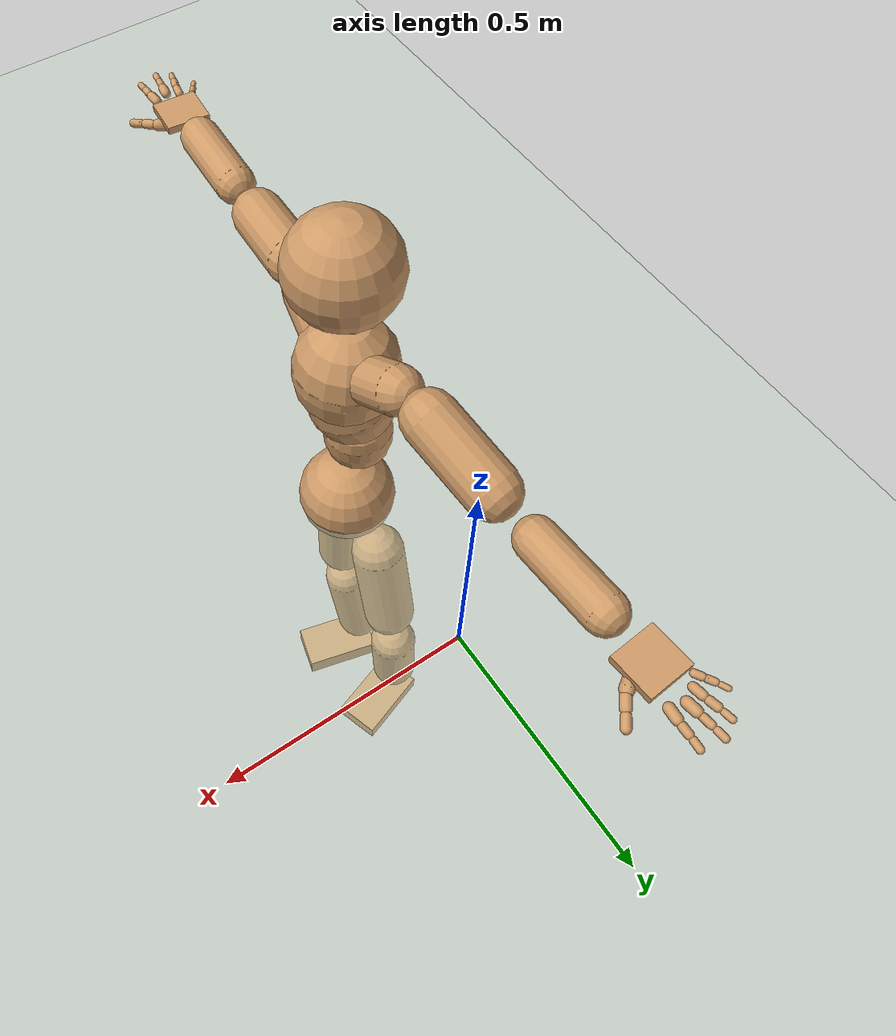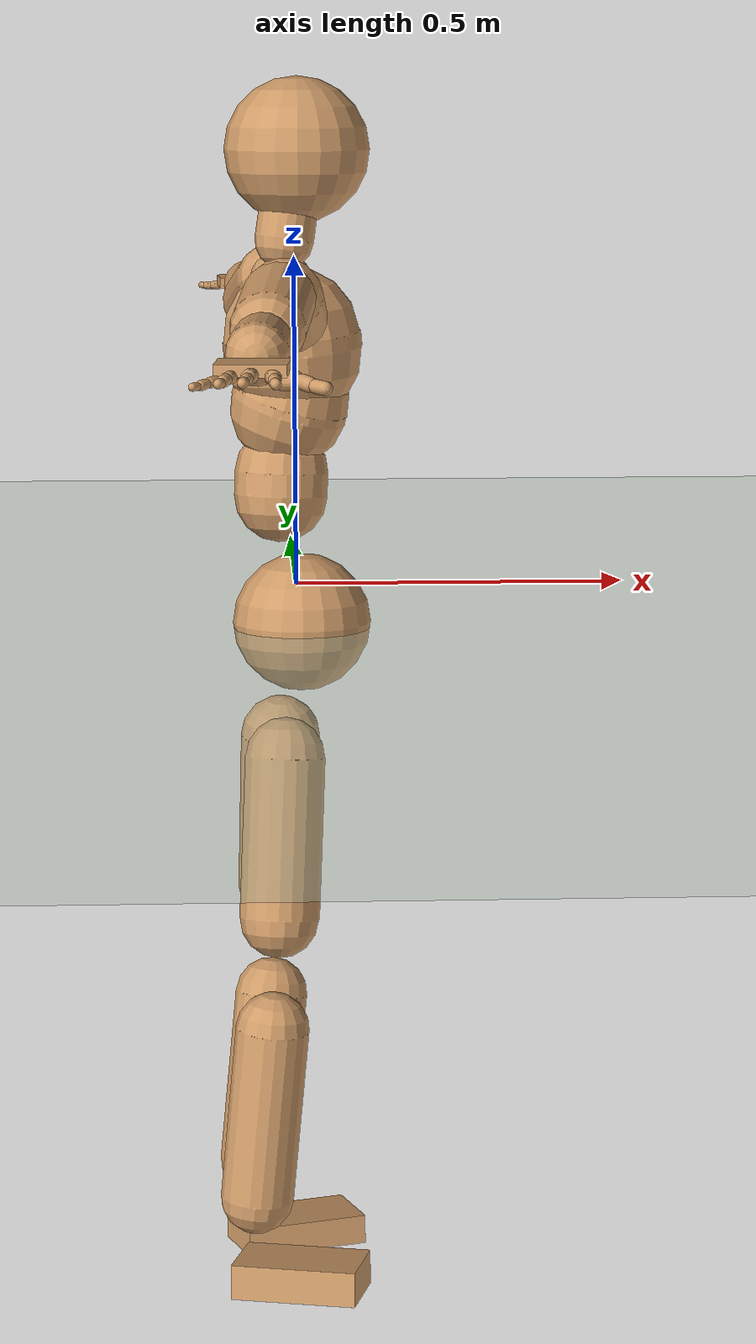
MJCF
<mujoco model="humanoid">
  <compiler coordinate="local" angle="radian"/>
  <default>
    <joint damping="0.0" armature="0.01" stiffness="0.0" limited="true"/>
    <geom conaffinity="1" condim="3" contype="7" margin="0.001" rgba="0.8 0.6 .4 1"/>
  </default>
  <asset>
    <texture type="skybox" builtin="gradient" rgb1=".4 .5 .6" rgb2="0 0 0" width="100" height="100"/>
    <texture builtin="flat" height="1278" mark="cross" markrgb="1 1 1" name="texgeom" random="0.01" rgb1="0.8 0.6 0.4" rgb2="0.8 0.6 0.4" type="cube" width="127"/>
    <texture builtin="checker" height="100" name="texplane" rgb1="0 0 0" rgb2="0.8 0.8 0.8" type="2d" width="100"/>
    <material name="MatPlane" reflectance="0.5" shininess="1" specular="1" texrepeat="60 60" texture="texplane"/>
    <material name="geom" texture="texgeom" texuniform="true"/>
  </asset>
  <worldbody>
    <light cutoff="100" diffuse="1 1 1" dir="-0 0 -1.3" directional="true" exponent="1" pos="0 0 1.3" specular=".1 .1 .1"/>
    <geom conaffinity="1" condim="3" name="floor" pos="0 0 0" rgba="0.8 0.9 0.8 1" size="100 100 .2" type="plane" material="MatPlane"/>
    <body name="Pelvis" pos="0.0008 -0.3877 0.0058">
      <freejoint name="Pelvis"/>
      <geom type="sphere" contype="1" conaffinity="1" density="500" size="0.0984" pos="0.0000 0.0000 0.0000" name="Pelvis"/>
      <body name="L_Hip" pos="-0.029 0.0532 -0.0979">
        <joint name="L_Hip_x" type="hinge" pos="0 0 0" axis="1 0 0" stiffness="800" damping="80" armature="0.02" range="-180.0000 180.0000"/>
        <joint name="L_Hip_y" type="hinge" pos="0 0 0" axis="0 1 0" stiffness="800" damping="80" armature="0.02" range="-180.0000 180.0000"/>
        <joint name="L_Hip_z" type="hinge" pos="0 0 0" axis="0 0 1" stiffness="800" damping="80" armature="0.02" range="-180.0000 180.0000"/>
        <geom type="capsule" contype="1" conaffinity="1" density="500" fromto="-0.0020 0.0131 -0.0796 -0.0079 0.0522 -0.3184" size="0.0573" name="L_Hip"/>
        <body name="L_Knee" pos="-0.0099 0.0653 -0.398">
          <joint name="L_Knee_x" type="hinge" pos="0 0 0" axis="1 0 0" stiffness="800" damping="80" armature="0.02" range="-180.0000 180.0000"/>
          <joint name="L_Knee_y" type="hinge" pos="0 0 0" axis="0 1 0" stiffness="800" damping="80" armature="0.02" range="-180.0000 180.0000"/>
          <joint name="L_Knee_z" type="hinge" pos="0 0 0" axis="0 0 1" stiffness="800" damping="80" armature="0.02" range="-180.0000 180.0000"/>
          <geom type="capsule" contype="1" conaffinity="1" density="500" fromto="-0.0082 -0.0092 -0.0822 -0.0329 -0.0367 -0.3287" size="0.0533" name="L_Knee"/>
          <body name="L_Ankle" pos="-0.0411 -0.0459 -0.4109">
            <joint name="L_Ankle_x" type="hinge" pos="0 0 0" axis="1 0 0" stiffness="800" damping="80" armature="0.02" range="-180.0000 180.0000"/>
            <joint name="L_Ankle_y" type="hinge" pos="0 0 0" axis="0 1 0" stiffness="800" damping="80" armature="0.02" range="-180.0000 180.0000"/>
            <joint name="L_Ankle_z" type="hinge" pos="0 0 0" axis="0 0 1" stiffness="800" damping="80" armature="0.02" range="-180.0000 180.0000"/>
            <geom type="box" contype="1" conaffinity="1" density="500" pos="0.0670 0.0224 -0.0300" size="0.0912 0.0523 0.0213" quat="0.9870 0.0000 0.0000 0.1607" name="L_Ankle"/>
            <body name="L_Toe" pos="0.134 0.0448 -0.06">
              <joint name="L_Toe_x" type="hinge" pos="0 0 0" axis="1 0 0" stiffness="500" damping="50" armature="0.02" range="-180.0000 180.0000"/>
              <joint name="L_Toe_y" type="hinge" pos="0 0 0" axis="0 1 0" stiffness="500" damping="50" armature="0.02" range="-180.0000 180.0000"/>
              <joint name="L_Toe_z" type="hinge" pos="0 0 0" axis="0 0 1" stiffness="500" damping="50" armature="0.02" range="-180.0000 180.0000"/>
              <geom type="box" contype="1" conaffinity="1" density="500" pos="0.0000 0.0000 0.0299" size="0.001 0.0025 0.0011" quat="0.9863 0.0000 0.0000 0.1651" name="L_Toe"/>
            </body>
          </body>
        </body>
      </body>
      <body name="R_Hip" pos="-0.023 -0.0545 -0.1082">
        <joint name="R_Hip_x" type="hinge" pos="0 0 0" axis="1 0 0" stiffness="800" damping="80" armature="0.02" range="-180.0000 180.0000"/>
        <joint name="R_Hip_y" type="hinge" pos="0 0 0" axis="0 1 0" stiffness="800" damping="80" armature="0.02" range="-180.0000 180.0000"/>
        <joint name="R_Hip_z" type="hinge" pos="0 0 0" axis="0 0 1" stiffness="800" damping="80" armature="0.02" range="-180.0000 180.0000"/>
        <geom type="capsule" contype="1" conaffinity="1" density="500" fromto="-0.0034 -0.0098 -0.0762 -0.0135 -0.0394 -0.3049" size="0.057" name="R_Hip"/>
        <body name="R_Knee" pos="-0.0169 -0.0492 -0.3812">
          <joint name="R_Knee_x" type="hinge" pos="0 0 0" axis="1 0 0" stiffness="800" damping="80" armature="0.02" range="-180.0000 180.0000"/>
          <joint name="R_Knee_y" type="hinge" pos="0 0 0" axis="0 1 0" stiffness="800" damping="80" armature="0.02" range="-180.0000 180.0000"/>
          <joint name="R_Knee_z" type="hinge" pos="0 0 0" axis="0 0 1" stiffness="800" damping="80" armature="0.02" range="-180.0000 180.0000"/>
          <geom type="capsule" contype="1" conaffinity="1" density="500" fromto="-0.0079 0.0036 -0.0849 -0.0318 0.0144 -0.3396" size="0.053" name="R_Knee"/>
          <body name="R_Ankle" pos="-0.0397 0.018 -0.4244">
            <joint name="R_Ankle_x" type="hinge" pos="0 0 0" axis="1 0 0" stiffness="800" damping="80" armature="0.02" range="-180.0000 180.0000"/>
            <joint name="R_Ankle_y" type="hinge" pos="0 0 0" axis="0 1 0" stiffness="800" damping="80" armature="0.02" range="-180.0000 180.0000"/>
            <joint name="R_Ankle_z" type="hinge" pos="0 0 0" axis="0 0 1" stiffness="800" damping="80" armature="0.02" range="-180.0000 180.0000"/>
            <geom type="box" contype="1" conaffinity="1" density="500" pos="0.0702 -0.0179 -0.0296" size="0.0912 0.0526 0.0256" quat="0.9922 0.0000 0.0000 -0.1243" name="R_Ankle"/>
            <body name="R_Toe" pos="0.1404 -0.0358 -0.0592">
              <joint name="R_Toe_x" type="hinge" pos="0 0 0" axis="1 0 0" stiffness="500" damping="50" armature="0.02" range="-180.0000 180.0000"/>
              <joint name="R_Toe_y" type="hinge" pos="0 0 0" axis="0 1 0" stiffness="500" damping="50" armature="0.02" range="-180.0000 180.0000"/>
              <joint name="R_Toe_z" type="hinge" pos="0 0 0" axis="0 0 1" stiffness="500" damping="50" armature="0.02" range="-180.0000 180.0000"/>
              <geom type="box" contype="1" conaffinity="1" density="500" pos="0.0000 0.0000 0.0252" size="0.001 0.0025 0.0011" quat="0.9932 0.0000 0.0000 -0.1161" name="R_Toe"/>
            </body>
          </body>
        </body>
      </body>
      <body name="Torso" pos="-0.0314 -0.002 0.1157">
        <joint name="Torso_x" type="hinge" pos="0 0 0" axis="1 0 0" stiffness="1000" damping="100" armature="0.02" range="-180.0000 180.0000"/>
        <joint name="Torso_y" type="hinge" pos="0 0 0" axis="0 1 0" stiffness="1000" damping="100" armature="0.02" range="-180.0000 180.0000"/>
        <joint name="Torso_z" type="hinge" pos="0 0 0" axis="0 0 1" stiffness="1000" damping="100" armature="0.02" range="-180.0000 180.0000"/>
        <geom type="capsule" contype="1" conaffinity="1" density="500" fromto="0.0039 0.0060 0.0994 0.0026 0.0040 0.0663" size="0.0665" name="Torso"/>
        <body name="Spine" pos="0.0066 0.01 0.1657">
          <joint name="Spine_x" type="hinge" pos="0 0 0" axis="1 0 0" stiffness="1000" damping="100" armature="0.02" range="-180.0000 180.0000"/>
          <joint name="Spine_y" type="hinge" pos="0 0 0" axis="0 1 0" stiffness="1000" damping="100" armature="0.02" range="-180.0000 180.0000"/>
          <joint name="Spine_z" type="hinge" pos="0 0 0" axis="0 0 1" stiffness="1000" damping="100" armature="0.02" range="-180.0000 180.0000"/>
          <geom type="capsule" contype="1" conaffinity="1" density="500" fromto="0.0112 -0.0054 0.0371 0.0075 -0.0036 0.0247" size="0.0833" name="Spine"/>
          <body name="Chest" pos="0.0187 -0.0089 0.0618">
            <joint name="Chest_x" type="hinge" pos="0 0 0" axis="1 0 0" stiffness="1000" damping="100" armature="0.02" range="-180.0000 180.0000"/>
            <joint name="Chest_y" type="hinge" pos="0 0 0" axis="0 1 0" stiffness="1000" damping="100" armature="0.02" range="-180.0000 180.0000"/>
            <joint name="Chest_z" type="hinge" pos="0 0 0" axis="0 0 1" stiffness="1000" damping="100" armature="0.02" range="-180.0000 180.0000"/>
            <geom type="capsule" contype="1" conaffinity="1" density="500" fromto="-0.0059 -0.0017 0.0649 -0.0039 -0.0011 0.0432" size="0.098" name="Chest"/>
            <body name="Neck" pos="-0.0201 -0.0073 0.1683">
              <joint name="Neck_x" type="hinge" pos="0 0 0" axis="1 0 0" stiffness="500" damping="50" armature="0.02" range="-180.0000 180.0000"/>
              <joint name="Neck_y" type="hinge" pos="0 0 0" axis="0 1 0" stiffness="500" damping="50" armature="0.02" range="-180.0000 180.0000"/>
              <joint name="Neck_z" type="hinge" pos="0 0 0" axis="0 0 1" stiffness="500" damping="50" armature="0.02" range="-180.0000 180.0000"/>
              <geom type="capsule" contype="1" conaffinity="1" density="500" fromto="0.0047 0.0042 0.0314 0.0188 0.0169 0.1257" size="0.0414" name="Neck"/>
              <body name="Head" pos="0.0235 0.0211 0.1571">
                <joint name="Head_x" type="hinge" pos="0 0 0" axis="1 0 0" stiffness="500" damping="50" armature="0.02" range="-180.0000 180.0000"/>
                <joint name="Head_y" type="hinge" pos="0 0 0" axis="0 1 0" stiffness="500" damping="50" armature="0.02" range="-180.0000 180.0000"/>
                <joint name="Head_z" type="hinge" pos="0 0 0" axis="0 0 1" stiffness="500" damping="50" armature="0.02" range="-180.0000 180.0000"/>
                <geom type="sphere" contype="1" conaffinity="1" density="500" size="0.1024" pos="0.0000 0.0000 0.0000" name="Head"/>
              </body>
            </body>
            <body name="L_Thorax" pos="-0.0027 0.0382 0.0777">
              <joint name="L_Thorax_x" type="hinge" pos="0 0 0" axis="1 0 0" stiffness="500" damping="50" armature="0.02" range="-180.0000 180.0000"/>
              <joint name="L_Thorax_y" type="hinge" pos="0 0 0" axis="0 1 0" stiffness="500" damping="50" armature="0.02" range="-180.0000 180.0000"/>
              <joint name="L_Thorax_z" type="hinge" pos="0 0 0" axis="0 0 1" stiffness="500" damping="50" armature="0.02" range="-180.0000 180.0000"/>
              <geom type="capsule" contype="1" conaffinity="1" density="500" fromto="-0.0040 0.0246 0.0135 -0.0159 0.0984 0.0540" size="0.0457" name="L_Thorax"/>
              <body name="L_Shoulder" pos="-0.0199 0.123 0.0676">
                <joint name="L_Shoulder_x" type="hinge" pos="0 0 0" axis="1 0 0" stiffness="500" damping="50" armature="0.02" range="-180.0000 180.0000"/>
                <joint name="L_Shoulder_y" type="hinge" pos="0 0 0" axis="0 1 0" stiffness="500" damping="50" armature="0.02" range="-180.0000 180.0000"/>
                <joint name="L_Shoulder_z" type="hinge" pos="0 0 0" axis="0 0 1" stiffness="500" damping="50" armature="0.02" range="-180.0000 180.0000"/>
                <geom type="capsule" contype="1" conaffinity="1" density="500" fromto="-0.0073 0.0494 -0.0149 -0.0291 0.1975 -0.0596" size="0.0515" name="L_Shoulder"/>
                <body name="L_Elbow" pos="-0.0364 0.2468 -0.0745">
                  <joint name="L_Elbow_x" type="hinge" pos="0 0 0" axis="1 0 0" stiffness="500" damping="50" armature="0.02" range="-720.0000 720.0000"/>
                  <joint name="L_Elbow_y" type="hinge" pos="0 0 0" axis="0 1 0" stiffness="500" damping="50" armature="0.02" range="-720.0000 720.0000"/>
                  <joint name="L_Elbow_z" type="hinge" pos="0 0 0" axis="0 0 1" stiffness="500" damping="50" armature="0.02" range="-720.0000 720.0000"/>
                  <geom type="capsule" contype="1" conaffinity="1" density="500" fromto="-0.0007 0.0534 0.0050 -0.0029 0.2138 0.0199" size="0.0392" name="L_Elbow"/>
                  <body name="L_Wrist" pos="-0.0037 0.2672 0.0249">
                    <joint name="L_Wrist_x" type="hinge" pos="0 0 0" axis="1 0 0" stiffness="300" damping="30" armature="0.02" range="-180.0000 180.0000"/>
                    <joint name="L_Wrist_y" type="hinge" pos="0 0 0" axis="0 1 0" stiffness="300" damping="30" armature="0.02" range="-180.0000 180.0000"/>
                    <joint name="L_Wrist_z" type="hinge" pos="0 0 0" axis="0 0 1" stiffness="300" damping="30" armature="0.02" range="-180.0000 180.0000"/>
                    <geom type="box" contype="1" conaffinity="1" density="500" pos="-0.0033 0.0440 -0.0063" size="0.0416 0.044 0.0077" quat="0.7332 0.0000 0.0000 -0.6800" name="L_Wrist"/>
                    <body name="L_Index1" pos="0.0196 0.1031 -0.01">
                      <joint name="L_Index1_x" type="hinge" pos="0 0 0" axis="1 0 0" stiffness="100" damping="10" armature="0.02" range="-180.0000 180.0000"/>
                      <joint name="L_Index1_y" type="hinge" pos="0 0 0" axis="0 1 0" stiffness="100" damping="10" armature="0.02" range="-180.0000 180.0000"/>
                      <joint name="L_Index1_z" type="hinge" pos="0 0 0" axis="0 0 1" stiffness="100" damping="10" armature="0.02" range="-180.0000 180.0000"/>
                      <geom type="capsule" contype="1" conaffinity="1" density="500" fromto="0.0007 0.0066 0.0003 0.0027 0.0263 0.0012" size="0.0094" name="L_Index1"/>
                      <body name="L_Index2" pos="0.0033 0.0328 0.0015">
                        <joint name="L_Index2_x" type="hinge" pos="0 0 0" axis="1 0 0" stiffness="100" damping="10" armature="0.02" range="-180.0000 180.0000"/>
                        <joint name="L_Index2_y" type="hinge" pos="0 0 0" axis="0 1 0" stiffness="100" damping="10" armature="0.02" range="-180.0000 180.0000"/>
                        <joint name="L_Index2_z" type="hinge" pos="0 0 0" axis="0 0 1" stiffness="100" damping="10" armature="0.02" range="-180.0000 180.0000"/>
                        <geom type="capsule" contype="1" conaffinity="1" density="500" fromto="-0.0001 0.0046 -0.0005 -0.0003 0.0185 -0.0021" size="0.0076" name="L_Index2"/>
                        <body name="L_Index3" pos="-0.0004 0.0231 -0.0026">
                          <joint name="L_Index3_x" type="hinge" pos="0 0 0" axis="1 0 0" stiffness="100" damping="10" armature="0.02" range="-180.0000 180.0000"/>
                          <joint name="L_Index3_y" type="hinge" pos="0 0 0" axis="0 1 0" stiffness="100" damping="10" armature="0.02" range="-180.0000 180.0000"/>
                          <joint name="L_Index3_z" type="hinge" pos="0 0 0" axis="0 0 1" stiffness="100" damping="10" armature="0.02" range="-180.0000 180.0000"/>
                          <geom type="capsule" contype="1" conaffinity="1" density="500" fromto="0.0003 0.0050 -0.0001 0.0013 0.0201 -0.0005" size="0.0065" name="L_Index3"/>
                        </body>
                      </body>
                    </body>
                    <body name="L_Middle1" pos="-0.0046 0.1112 -0.0072">
                      <joint name="L_Middle1_x" type="hinge" pos="0 0 0" axis="1 0 0" stiffness="100" damping="10" armature="0.02" range="-180.0000 180.0000"/>
                      <joint name="L_Middle1_y" type="hinge" pos="0 0 0" axis="0 1 0" stiffness="100" damping="10" armature="0.02" range="-180.0000 180.0000"/>
                      <joint name="L_Middle1_z" type="hinge" pos="0 0 0" axis="0 0 1" stiffness="100" damping="10" armature="0.02" range="-180.0000 180.0000"/>
                      <geom type="capsule" contype="1" conaffinity="1" density="500" fromto="-0.0009 0.0063 0.0001 -0.0035 0.0251 0.0003" size="0.0096" name="L_Middle1"/>
                      <body name="L_Middle2" pos="-0.0044 0.0313 0.0004">
                        <joint name="L_Middle2_x" type="hinge" pos="0 0 0" axis="1 0 0" stiffness="100" damping="10" armature="0.02" range="-180.0000 180.0000"/>
                        <joint name="L_Middle2_y" type="hinge" pos="0 0 0" axis="0 1 0" stiffness="100" damping="10" armature="0.02" range="-180.0000 180.0000"/>
                        <joint name="L_Middle2_z" type="hinge" pos="0 0 0" axis="0 0 1" stiffness="100" damping="10" armature="0.02" range="-180.0000 180.0000"/>
                        <geom type="capsule" contype="1" conaffinity="1" density="500" fromto="-0.0009 0.0048 -0.0005 -0.0036 0.0192 -0.0019" size="0.0071" name="L_Middle2"/>
                        <body name="L_Middle3" pos="-0.0045 0.024 -0.0024">
                          <joint name="L_Middle3_x" type="hinge" pos="0 0 0" axis="1 0 0" stiffness="100" damping="10" armature="0.02" range="-180.0000 180.0000"/>
                          <joint name="L_Middle3_y" type="hinge" pos="0 0 0" axis="0 1 0" stiffness="100" damping="10" armature="0.02" range="-180.0000 180.0000"/>
                          <joint name="L_Middle3_z" type="hinge" pos="0 0 0" axis="0 0 1" stiffness="100" damping="10" armature="0.02" range="-180.0000 180.0000"/>
                          <geom type="capsule" contype="1" conaffinity="1" density="500" fromto="-0.0005 0.0052 -0.0001 -0.0020 0.0208 -0.0003" size="0.0063" name="L_Middle3"/>
                        </body>
                      </body>
                    </body>
                    <body name="L_Pinky1" pos="-0.0457 0.086 -0.0157">
                      <joint name="L_Pinky1_x" type="hinge" pos="0 0 0" axis="1 0 0" stiffness="100" damping="10" armature="0.02" range="-180.0000 180.0000"/>
                      <joint name="L_Pinky1_y" type="hinge" pos="0 0 0" axis="0 1 0" stiffness="100" damping="10" armature="0.02" range="-180.0000 180.0000"/>
                      <joint name="L_Pinky1_z" type="hinge" pos="0 0 0" axis="0 0 1" stiffness="100" damping="10" armature="0.02" range="-180.0000 180.0000"/>
                      <geom type="capsule" contype="1" conaffinity="1" density="500" fromto="-0.0023 0.0033 -0.0003 -0.0092 0.0134 -0.0013" size="0.0068" name="L_Pinky1"/>
                      <body name="L_Pinky2" pos="-0.0115 0.0167 -0.0016">
                        <joint name="L_Pinky2_x" type="hinge" pos="0 0 0" axis="1 0 0" stiffness="100" damping="10" armature="0.02" range="-180.0000 180.0000"/>
                        <joint name="L_Pinky2_y" type="hinge" pos="0 0 0" axis="0 1 0" stiffness="100" damping="10" armature="0.02" range="-180.0000 180.0000"/>
                        <joint name="L_Pinky2_z" type="hinge" pos="0 0 0" axis="0 0 1" stiffness="100" damping="10" armature="0.02" range="-180.0000 180.0000"/>
                        <geom type="capsule" contype="1" conaffinity="1" density="500" fromto="-0.0022 0.0033 -0.0004 -0.0087 0.0132 -0.0014" size="0.0064" name="L_Pinky2"/>
                        <body name="L_Pinky3" pos="-0.0109 0.0165 -0.0018">
                          <joint name="L_Pinky3_x" type="hinge" pos="0 0 0" axis="1 0 0" stiffness="100" damping="10" armature="0.02" range="-180.0000 180.0000"/>
                          <joint name="L_Pinky3_y" type="hinge" pos="0 0 0" axis="0 1 0" stiffness="100" damping="10" armature="0.02" range="-180.0000 180.0000"/>
                          <joint name="L_Pinky3_z" type="hinge" pos="0 0 0" axis="0 0 1" stiffness="100" damping="10" armature="0.02" range="-180.0000 180.0000"/>
                          <geom type="capsule" contype="1" conaffinity="1" density="500" fromto="-0.0018 0.0037 0.0000 -0.0071 0.0148 0.0002" size="0.0049" name="L_Pinky3"/>
                        </body>
                      </body>
                    </body>
                    <body name="L_Ring1" pos="-0.0288 0.0993 -0.0101">
                      <joint name="L_Ring1_x" type="hinge" pos="0 0 0" axis="1 0 0" stiffness="100" damping="10" armature="0.02" range="-180.0000 180.0000"/>
                      <joint name="L_Ring1_y" type="hinge" pos="0 0 0" axis="0 1 0" stiffness="100" damping="10" armature="0.02" range="-180.0000 180.0000"/>
                      <joint name="L_Ring1_z" type="hinge" pos="0 0 0" axis="0 0 1" stiffness="100" damping="10" armature="0.02" range="-180.0000 180.0000"/>
                      <geom type="capsule" contype="1" conaffinity="1" density="500" fromto="-0.0010 0.0058 0.0001 -0.0040 0.0232 0.0006" size="0.0081" name="L_Ring1"/>
                      <body name="L_Ring2" pos="-0.005 0.029 0.0007">
                        <joint name="L_Ring2_x" type="hinge" pos="0 0 0" axis="1 0 0" stiffness="100" damping="10" armature="0.02" range="-180.0000 180.0000"/>
                        <joint name="L_Ring2_y" type="hinge" pos="0 0 0" axis="0 1 0" stiffness="100" damping="10" armature="0.02" range="-180.0000 180.0000"/>
                        <joint name="L_Ring2_z" type="hinge" pos="0 0 0" axis="0 0 1" stiffness="100" damping="10" armature="0.02" range="-180.0000 180.0000"/>
                        <geom type="capsule" contype="1" conaffinity="1" density="500" fromto="-0.0013 0.0047 -0.0004 -0.0054 0.0188 -0.0017" size="0.0076" name="L_Ring2"/>
                        <body name="L_Ring3" pos="-0.0067 0.0235 -0.0022">
                          <joint name="L_Ring3_x" type="hinge" pos="0 0 0" axis="1 0 0" stiffness="100" damping="10" armature="0.02" range="-180.0000 180.0000"/>
                          <joint name="L_Ring3_y" type="hinge" pos="0 0 0" axis="0 1 0" stiffness="100" damping="10" armature="0.02" range="-180.0000 180.0000"/>
                          <joint name="L_Ring3_z" type="hinge" pos="0 0 0" axis="0 0 1" stiffness="100" damping="10" armature="0.02" range="-180.0000 180.0000"/>
                          <geom type="capsule" contype="1" conaffinity="1" density="500" fromto="-0.0009 0.0051 -0.0000 -0.0038 0.0204 -0.0001" size="0.0059" name="L_Ring3"/>
                        </body>
                      </body>
                    </body>
                    <body name="L_Thumb1" pos="0.0264 0.0404 -0.0205">
                      <joint name="L_Thumb1_x" type="hinge" pos="0 0 0" axis="1 0 0" stiffness="100" damping="10" armature="0.02" range="-180.0000 180.0000"/>
                      <joint name="L_Thumb1_y" type="hinge" pos="0 0 0" axis="0 1 0" stiffness="100" damping="10" armature="0.02" range="-180.0000 180.0000"/>
                      <joint name="L_Thumb1_z" type="hinge" pos="0 0 0" axis="0 0 1" stiffness="100" damping="10" armature="0.02" range="-180.0000 180.0000"/>
                      <geom type="capsule" contype="1" conaffinity="1" density="500" fromto="0.0053 0.0034 0.0003 0.0212 0.0135 0.0012" size="0.0124" name="L_Thumb1"/>
                      <body name="L_Thumb2" pos="0.0265 0.0169 0.0015">
                        <joint name="L_Thumb2_x" type="hinge" pos="0 0 0" axis="1 0 0" stiffness="100" damping="10" armature="0.02" range="-180.0000 180.0000"/>
                        <joint name="L_Thumb2_y" type="hinge" pos="0 0 0" axis="0 1 0" stiffness="100" damping="10" armature="0.02" range="-180.0000 180.0000"/>
                        <joint name="L_Thumb2_z" type="hinge" pos="0 0 0" axis="0 0 1" stiffness="100" damping="10" armature="0.02" range="-180.0000 180.0000"/>
                        <geom type="capsule" contype="1" conaffinity="1" density="500" fromto="0.0033 0.0042 -0.0009 0.0133 0.0168 -0.0035" size="0.0098" name="L_Thumb2"/>
                        <body name="L_Thumb3" pos="0.0166 0.021 -0.0044">
                          <joint name="L_Thumb3_x" type="hinge" pos="0 0 0" axis="1 0 0" stiffness="100" damping="10" armature="0.02" range="-180.0000 180.0000"/>
                          <joint name="L_Thumb3_y" type="hinge" pos="0 0 0" axis="0 1 0" stiffness="100" damping="10" armature="0.02" range="-180.0000 180.0000"/>
                          <joint name="L_Thumb3_z" type="hinge" pos="0 0 0" axis="0 0 1" stiffness="100" damping="10" armature="0.02" range="-180.0000 180.0000"/>
                          <geom type="capsule" contype="1" conaffinity="1" density="500" fromto="0.0037 0.0046 -0.0005 0.0149 0.0184 -0.0019" size="0.0087" name="L_Thumb3"/>
                        </body>
                      </body>
                    </body>
                  </body>
                </body>
              </body>
            </body>
            <body name="R_Thorax" pos="-0.0067 -0.0394 0.0784">
              <joint name="R_Thorax_x" type="hinge" pos="0 0 0" axis="1 0 0" stiffness="500" damping="50" armature="0.02" range="-180.0000 180.0000"/>
              <joint name="R_Thorax_y" type="hinge" pos="0 0 0" axis="0 1 0" stiffness="500" damping="50" armature="0.02" range="-180.0000 180.0000"/>
              <joint name="R_Thorax_z" type="hinge" pos="0 0 0" axis="0 0 1" stiffness="500" damping="50" armature="0.02" range="-180.0000 180.0000"/>
              <geom type="capsule" contype="1" conaffinity="1" density="500" fromto="-0.0028 -0.0230 0.0130 -0.0112 -0.0920 0.0519" size="0.054" name="R_Thorax"/>
              <body name="R_Shoulder" pos="-0.014 -0.115 0.0649">
                <joint name="R_Shoulder_x" type="hinge" pos="0 0 0" axis="1 0 0" stiffness="500" damping="50" armature="0.02" range="-180.0000 180.0000"/>
                <joint name="R_Shoulder_y" type="hinge" pos="0 0 0" axis="0 1 0" stiffness="500" damping="50" armature="0.02" range="-180.0000 180.0000"/>
                <joint name="R_Shoulder_z" type="hinge" pos="0 0 0" axis="0 0 1" stiffness="500" damping="50" armature="0.02" range="-180.0000 180.0000"/>
                <geom type="capsule" contype="1" conaffinity="1" density="500" fromto="-0.0055 -0.0525 -0.0092 -0.0222 -0.2099 -0.0367" size="0.0507" name="R_Shoulder"/>
                <body name="R_Elbow" pos="-0.0277 -0.2623 -0.0458">
                  <joint name="R_Elbow_x" type="hinge" pos="0 0 0" axis="1 0 0" stiffness="500" damping="50" armature="0.02" range="-720.0000 720.0000"/>
                  <joint name="R_Elbow_y" type="hinge" pos="0 0 0" axis="0 1 0" stiffness="500" damping="50" armature="0.02" range="-720.0000 720.0000"/>
                  <joint name="R_Elbow_z" type="hinge" pos="0 0 0" axis="0 0 1" stiffness="500" damping="50" armature="0.02" range="-720.0000 720.0000"/>
                  <geom type="capsule" contype="1" conaffinity="1" density="500" fromto="-0.0027 -0.0518 0.0003 -0.0107 -0.2070 0.0012" size="0.0402" name="R_Elbow"/>
                  <body name="R_Wrist" pos="-0.0133 -0.2588 0.0015">
                    <joint name="R_Wrist_x" type="hinge" pos="0 0 0" axis="1 0 0" stiffness="300" damping="30" armature="0.02" range="-180.0000 180.0000"/>
                    <joint name="R_Wrist_y" type="hinge" pos="0 0 0" axis="0 1 0" stiffness="300" damping="30" armature="0.02" range="-180.0000 180.0000"/>
                    <joint name="R_Wrist_z" type="hinge" pos="0 0 0" axis="0 0 1" stiffness="300" damping="30" armature="0.02" range="-180.0000 180.0000"/>
                    <geom type="box" contype="1" conaffinity="1" density="500" pos="-0.0038 -0.0438 -0.0081" size="0.0416 0.0451 0.0079" quat="0.7370 0.0000 0.0000 0.6759" name="R_Wrist"/>
                    <body name="R_Index1" pos="0.0186 -0.1027 -0.0134">
                      <joint name="R_Index1_x" type="hinge" pos="0 0 0" axis="1 0 0" stiffness="100" damping="10" armature="0.02" range="-180.0000 180.0000"/>
                      <joint name="R_Index1_y" type="hinge" pos="0 0 0" axis="0 1 0" stiffness="100" damping="10" armature="0.02" range="-180.0000 180.0000"/>
                      <joint name="R_Index1_z" type="hinge" pos="0 0 0" axis="0 0 1" stiffness="100" damping="10" armature="0.02" range="-180.0000 180.0000"/>
                      <geom type="capsule" contype="1" conaffinity="1" density="500" fromto="0.0007 -0.0066 0.0003 0.0027 -0.0263 0.0012" size="0.0094" name="R_Index1"/>
                      <body name="R_Index2" pos="0.0033 -0.0328 0.0015">
                        <joint name="R_Index2_x" type="hinge" pos="0 0 0" axis="1 0 0" stiffness="100" damping="10" armature="0.02" range="-180.0000 180.0000"/>
                        <joint name="R_Index2_y" type="hinge" pos="0 0 0" axis="0 1 0" stiffness="100" damping="10" armature="0.02" range="-180.0000 180.0000"/>
                        <joint name="R_Index2_z" type="hinge" pos="0 0 0" axis="0 0 1" stiffness="100" damping="10" armature="0.02" range="-180.0000 180.0000"/>
                        <geom type="capsule" contype="1" conaffinity="1" density="500" fromto="-0.0001 -0.0046 -0.0005 -0.0003 -0.0185 -0.0021" size="0.0076" name="R_Index2"/>
                        <body name="R_Index3" pos="-0.0004 -0.0231 -0.0026">
                          <joint name="R_Index3_x" type="hinge" pos="0 0 0" axis="1 0 0" stiffness="100" damping="10" armature="0.02" range="-180.0000 180.0000"/>
                          <joint name="R_Index3_y" type="hinge" pos="0 0 0" axis="0 1 0" stiffness="100" damping="10" armature="0.02" range="-180.0000 180.0000"/>
                          <joint name="R_Index3_z" type="hinge" pos="0 0 0" axis="0 0 1" stiffness="100" damping="10" armature="0.02" range="-180.0000 180.0000"/>
                          <geom type="capsule" contype="1" conaffinity="1" density="500" fromto="0.0003 -0.0042 -0.0001 0.0013 -0.0169 -0.0005" size="0.0067" name="R_Index3"/>
                        </body>
                      </body>
                    </body>
                    <body name="R_Middle1" pos="-0.0056 -0.1108 -0.0106">
                      <joint name="R_Middle1_x" type="hinge" pos="0 0 0" axis="1 0 0" stiffness="100" damping="10" armature="0.02" range="-180.0000 180.0000"/>
                      <joint name="R_Middle1_y" type="hinge" pos="0 0 0" axis="0 1 0" stiffness="100" damping="10" armature="0.02" range="-180.0000 180.0000"/>
                      <joint name="R_Middle1_z" type="hinge" pos="0 0 0" axis="0 0 1" stiffness="100" damping="10" armature="0.02" range="-180.0000 180.0000"/>
                      <geom type="capsule" contype="1" conaffinity="1" density="500" fromto="-0.0009 -0.0063 0.0001 -0.0035 -0.0251 0.0003" size="0.0096" name="R_Middle1"/>
                      <body name="R_Middle2" pos="-0.0044 -0.0313 0.0004">
                        <joint name="R_Middle2_x" type="hinge" pos="0 0 0" axis="1 0 0" stiffness="100" damping="10" armature="0.02" range="-180.0000 180.0000"/>
                        <joint name="R_Middle2_y" type="hinge" pos="0 0 0" axis="0 1 0" stiffness="100" damping="10" armature="0.02" range="-180.0000 180.0000"/>
                        <joint name="R_Middle2_z" type="hinge" pos="0 0 0" axis="0 0 1" stiffness="100" damping="10" armature="0.02" range="-180.0000 180.0000"/>
                        <geom type="capsule" contype="1" conaffinity="1" density="500" fromto="-0.0009 -0.0048 -0.0005 -0.0036 -0.0192 -0.0019" size="0.0071" name="R_Middle2"/>
                        <body name="R_Middle3" pos="-0.0045 -0.024 -0.0024">
                          <joint name="R_Middle3_x" type="hinge" pos="0 0 0" axis="1 0 0" stiffness="100" damping="10" armature="0.02" range="-180.0000 180.0000"/>
                          <joint name="R_Middle3_y" type="hinge" pos="0 0 0" axis="0 1 0" stiffness="100" damping="10" armature="0.02" range="-180.0000 180.0000"/>
                          <joint name="R_Middle3_z" type="hinge" pos="0 0 0" axis="0 0 1" stiffness="100" damping="10" armature="0.02" range="-180.0000 180.0000"/>
                          <geom type="capsule" contype="1" conaffinity="1" density="500" fromto="-0.0005 -0.0044 -0.0001 -0.0020 -0.0176 -0.0003" size="0.0065" name="R_Middle3"/>
                        </body>
                      </body>
                    </body>
                    <body name="R_Pinky1" pos="-0.0467 -0.0856 -0.0191">
                      <joint name="R_Pinky1_x" type="hinge" pos="0 0 0" axis="1 0 0" stiffness="100" damping="10" armature="0.02" range="-180.0000 180.0000"/>
                      <joint name="R_Pinky1_y" type="hinge" pos="0 0 0" axis="0 1 0" stiffness="100" damping="10" armature="0.02" range="-180.0000 180.0000"/>
                      <joint name="R_Pinky1_z" type="hinge" pos="0 0 0" axis="0 0 1" stiffness="100" damping="10" armature="0.02" range="-180.0000 180.0000"/>
                      <geom type="capsule" contype="1" conaffinity="1" density="500" fromto="-0.0023 -0.0033 -0.0003 -0.0092 -0.0134 -0.0013" size="0.0068" name="R_Pinky1"/>
                      <body name="R_Pinky2" pos="-0.0115 -0.0167 -0.0016">
                        <joint name="R_Pinky2_x" type="hinge" pos="0 0 0" axis="1 0 0" stiffness="100" damping="10" armature="0.02" range="-180.0000 180.0000"/>
                        <joint name="R_Pinky2_y" type="hinge" pos="0 0 0" axis="0 1 0" stiffness="100" damping="10" armature="0.02" range="-180.0000 180.0000"/>
                        <joint name="R_Pinky2_z" type="hinge" pos="0 0 0" axis="0 0 1" stiffness="100" damping="10" armature="0.02" range="-180.0000 180.0000"/>
                        <geom type="capsule" contype="1" conaffinity="1" density="500" fromto="-0.0022 -0.0033 -0.0004 -0.0087 -0.0132 -0.0014" size="0.0064" name="R_Pinky2"/>
                        <body name="R_Pinky3" pos="-0.0109 -0.0165 -0.0018">
                          <joint name="R_Pinky3_x" type="hinge" pos="0 0 0" axis="1 0 0" stiffness="100" damping="10" armature="0.02" range="-180.0000 180.0000"/>
                          <joint name="R_Pinky3_y" type="hinge" pos="0 0 0" axis="0 1 0" stiffness="100" damping="10" armature="0.02" range="-180.0000 180.0000"/>
                          <joint name="R_Pinky3_z" type="hinge" pos="0 0 0" axis="0 0 1" stiffness="100" damping="10" armature="0.02" range="-180.0000 180.0000"/>
                          <geom type="capsule" contype="1" conaffinity="1" density="500" fromto="-0.0018 -0.0029 0.0000 -0.0071 -0.0116 0.0002" size="0.0051" name="R_Pinky3"/>
                        </body>
                      </body>
                    </body>
                    <body name="R_Ring1" pos="-0.0298 -0.0989 -0.0135">
                      <joint name="R_Ring1_x" type="hinge" pos="0 0 0" axis="1 0 0" stiffness="100" damping="10" armature="0.02" range="-180.0000 180.0000"/>
                      <joint name="R_Ring1_y" type="hinge" pos="0 0 0" axis="0 1 0" stiffness="100" damping="10" armature="0.02" range="-180.0000 180.0000"/>
                      <joint name="R_Ring1_z" type="hinge" pos="0 0 0" axis="0 0 1" stiffness="100" damping="10" armature="0.02" range="-180.0000 180.0000"/>
                      <geom type="capsule" contype="1" conaffinity="1" density="500" fromto="-0.0010 -0.0058 0.0001 -0.0040 -0.0232 0.0006" size="0.0081" name="R_Ring1"/>
                      <body name="R_Ring2" pos="-0.005 -0.029 0.0007">
                        <joint name="R_Ring2_x" type="hinge" pos="0 0 0" axis="1 0 0" stiffness="100" damping="10" armature="0.02" range="-180.0000 180.0000"/>
                        <joint name="R_Ring2_y" type="hinge" pos="0 0 0" axis="0 1 0" stiffness="100" damping="10" armature="0.02" range="-180.0000 180.0000"/>
                        <joint name="R_Ring2_z" type="hinge" pos="0 0 0" axis="0 0 1" stiffness="100" damping="10" armature="0.02" range="-180.0000 180.0000"/>
                        <geom type="capsule" contype="1" conaffinity="1" density="500" fromto="-0.0013 -0.0047 -0.0004 -0.0054 -0.0188 -0.0017" size="0.0076" name="R_Ring2"/>
                        <body name="R_Ring3" pos="-0.0067 -0.0235 -0.0022">
                          <joint name="R_Ring3_x" type="hinge" pos="0 0 0" axis="1 0 0" stiffness="100" damping="10" armature="0.02" range="-180.0000 180.0000"/>
                          <joint name="R_Ring3_y" type="hinge" pos="0 0 0" axis="0 1 0" stiffness="100" damping="10" armature="0.02" range="-180.0000 180.0000"/>
                          <joint name="R_Ring3_z" type="hinge" pos="0 0 0" axis="0 0 1" stiffness="100" damping="10" armature="0.02" range="-180.0000 180.0000"/>
                          <geom type="capsule" contype="1" conaffinity="1" density="500" fromto="-0.0009 -0.0043 -0.0000 -0.0038 -0.0172 -0.0001" size="0.0061" name="R_Ring3"/>
                        </body>
                      </body>
                    </body>
                    <body name="R_Thumb1" pos="0.0254 -0.04 -0.0239">
                      <joint name="R_Thumb1_x" type="hinge" pos="0 0 0" axis="1 0 0" stiffness="100" damping="10" armature="0.02" range="-180.0000 180.0000"/>
                      <joint name="R_Thumb1_y" type="hinge" pos="0 0 0" axis="0 1 0" stiffness="100" damping="10" armature="0.02" range="-180.0000 180.0000"/>
                      <joint name="R_Thumb1_z" type="hinge" pos="0 0 0" axis="0 0 1" stiffness="100" damping="10" armature="0.02" range="-180.0000 180.0000"/>
                      <geom type="capsule" contype="1" conaffinity="1" density="500" fromto="0.0053 -0.0034 0.0003 0.0212 -0.0135 0.0012" size="0.0124" name="R_Thumb1"/>
                      <body name="R_Thumb2" pos="0.0265 -0.0169 0.0015">
                        <joint name="R_Thumb2_x" type="hinge" pos="0 0 0" axis="1 0 0" stiffness="100" damping="10" armature="0.02" range="-180.0000 180.0000"/>
                        <joint name="R_Thumb2_y" type="hinge" pos="0 0 0" axis="0 1 0" stiffness="100" damping="10" armature="0.02" range="-180.0000 180.0000"/>
                        <joint name="R_Thumb2_z" type="hinge" pos="0 0 0" axis="0 0 1" stiffness="100" damping="10" armature="0.02" range="-180.0000 180.0000"/>
                        <geom type="capsule" contype="1" conaffinity="1" density="500" fromto="0.0033 -0.0042 -0.0009 0.0133 -0.0168 -0.0035" size="0.0098" name="R_Thumb2"/>
                        <body name="R_Thumb3" pos="0.0166 -0.021 -0.0044">
                          <joint name="R_Thumb3_x" type="hinge" pos="0 0 0" axis="1 0 0" stiffness="100" damping="10" armature="0.02" range="-180.0000 180.0000"/>
                          <joint name="R_Thumb3_y" type="hinge" pos="0 0 0" axis="0 1 0" stiffness="100" damping="10" armature="0.02" range="-180.0000 180.0000"/>
                          <joint name="R_Thumb3_z" type="hinge" pos="0 0 0" axis="0 0 1" stiffness="100" damping="10" armature="0.02" range="-180.0000 180.0000"/>
                          <geom type="capsule" contype="1" conaffinity="1" density="500" fromto="0.0037 -0.0038 -0.0005 0.0149 -0.0152 -0.0019" size="0.0089" name="R_Thumb3"/>
                        </body>
                      </body>
                    </body>
                  </body>
                </body>
              </body>
            </body>
          </body>
        </body>
      </body>
    </body>
  </worldbody>
  <actuator>
    <motor name="L_Hip_x" joint="L_Hip_x" gear="500"/>
    <motor name="L_Hip_y" joint="L_Hip_y" gear="500"/>
    <motor name="L_Hip_z" joint="L_Hip_z" gear="500"/>
    <motor name="L_Knee_x" joint="L_Knee_x" gear="500"/>
    <motor name="L_Knee_y" joint="L_Knee_y" gear="500"/>
    <motor name="L_Knee_z" joint="L_Knee_z" gear="500"/>
    <motor name="L_Ankle_x" joint="L_Ankle_x" gear="500"/>
    <motor name="L_Ankle_y" joint="L_Ankle_y" gear="500"/>
    <motor name="L_Ankle_z" joint="L_Ankle_z" gear="500"/>
    <motor name="L_Toe_x" joint="L_Toe_x" gear="500"/>
    <motor name="L_Toe_y" joint="L_Toe_y" gear="500"/>
    <motor name="L_Toe_z" joint="L_Toe_z" gear="500"/>
    <motor name="R_Hip_x" joint="R_Hip_x" gear="500"/>
    <motor name="R_Hip_y" joint="R_Hip_y" gear="500"/>
    <motor name="R_Hip_z" joint="R_Hip_z" gear="500"/>
    <motor name="R_Knee_x" joint="R_Knee_x" gear="500"/>
    <motor name="R_Knee_y" joint="R_Knee_y" gear="500"/>
    <motor name="R_Knee_z" joint="R_Knee_z" gear="500"/>
    <motor name="R_Ankle_x" joint="R_Ankle_x" gear="500"/>
    <motor name="R_Ankle_y" joint="R_Ankle_y" gear="500"/>
    <motor name="R_Ankle_z" joint="R_Ankle_z" gear="500"/>
    <motor name="R_Toe_x" joint="R_Toe_x" gear="500"/>
    <motor name="R_Toe_y" joint="R_Toe_y" gear="500"/>
    <motor name="R_Toe_z" joint="R_Toe_z" gear="500"/>
    <motor name="Torso_x" joint="Torso_x" gear="500"/>
    <motor name="Torso_y" joint="Torso_y" gear="500"/>
    <motor name="Torso_z" joint="Torso_z" gear="500"/>
    <motor name="Spine_x" joint="Spine_x" gear="500"/>
    <motor name="Spine_y" joint="Spine_y" gear="500"/>
    <motor name="Spine_z" joint="Spine_z" gear="500"/>
    <motor name="Chest_x" joint="Chest_x" gear="500"/>
    <motor name="Chest_y" joint="Chest_y" gear="500"/>
    <motor name="Chest_z" joint="Chest_z" gear="500"/>
    <motor name="Neck_x" joint="Neck_x" gear="500"/>
    <motor name="Neck_y" joint="Neck_y" gear="500"/>
    <motor name="Neck_z" joint="Neck_z" gear="500"/>
    <motor name="Head_x" joint="Head_x" gear="500"/>
    <motor name="Head_y" joint="Head_y" gear="500"/>
    <motor name="Head_z" joint="Head_z" gear="500"/>
    <motor name="L_Thorax_x" joint="L_Thorax_x" gear="500"/>
    <motor name="L_Thorax_y" joint="L_Thorax_y" gear="500"/>
    <motor name="L_Thorax_z" joint="L_Thorax_z" gear="500"/>
    <motor name="L_Shoulder_x" joint="L_Shoulder_x" gear="500"/>
    <motor name="L_Shoulder_y" joint="L_Shoulder_y" gear="500"/>
    <motor name="L_Shoulder_z" joint="L_Shoulder_z" gear="500"/>
    <motor name="L_Elbow_x" joint="L_Elbow_x" gear="500"/>
    <motor name="L_Elbow_y" joint="L_Elbow_y" gear="500"/>
    <motor name="L_Elbow_z" joint="L_Elbow_z" gear="500"/>
    <motor name="L_Wrist_x" joint="L_Wrist_x" gear="500"/>
    <motor name="L_Wrist_y" joint="L_Wrist_y" gear="500"/>
    <motor name="L_Wrist_z" joint="L_Wrist_z" gear="500"/>
    <motor name="L_Index1_x" joint="L_Index1_x" gear="500"/>
    <motor name="L_Index1_y" joint="L_Index1_y" gear="500"/>
    <motor name="L_Index1_z" joint="L_Index1_z" gear="500"/>
    <motor name="L_Index2_x" joint="L_Index2_x" gear="500"/>
    <motor name="L_Index2_y" joint="L_Index2_y" gear="500"/>
    <motor name="L_Index2_z" joint="L_Index2_z" gear="500"/>
    <motor name="L_Index3_x" joint="L_Index3_x" gear="500"/>
    <motor name="L_Index3_y" joint="L_Index3_y" gear="500"/>
    <motor name="L_Index3_z" joint="L_Index3_z" gear="500"/>
    <motor name="L_Middle1_x" joint="L_Middle1_x" gear="500"/>
    <motor name="L_Middle1_y" joint="L_Middle1_y" gear="500"/>
    <motor name="L_Middle1_z" joint="L_Middle1_z" gear="500"/>
    <motor name="L_Middle2_x" joint="L_Middle2_x" gear="500"/>
    <motor name="L_Middle2_y" joint="L_Middle2_y" gear="500"/>
    <motor name="L_Middle2_z" joint="L_Middle2_z" gear="500"/>
    <motor name="L_Middle3_x" joint="L_Middle3_x" gear="500"/>
    <motor name="L_Middle3_y" joint="L_Middle3_y" gear="500"/>
    <motor name="L_Middle3_z" joint="L_Middle3_z" gear="500"/>
    <motor name="L_Pinky1_x" joint="L_Pinky1_x" gear="500"/>
    <motor name="L_Pinky1_y" joint="L_Pinky1_y" gear="500"/>
    <motor name="L_Pinky1_z" joint="L_Pinky1_z" gear="500"/>
    <motor name="L_Pinky2_x" joint="L_Pinky2_x" gear="500"/>
    <motor name="L_Pinky2_y" joint="L_Pinky2_y" gear="500"/>
    <motor name="L_Pinky2_z" joint="L_Pinky2_z" gear="500"/>
    <motor name="L_Pinky3_x" joint="L_Pinky3_x" gear="500"/>
    <motor name="L_Pinky3_y" joint="L_Pinky3_y" gear="500"/>
    <motor name="L_Pinky3_z" joint="L_Pinky3_z" gear="500"/>
    <motor name="L_Ring1_x" joint="L_Ring1_x" gear="500"/>
    <motor name="L_Ring1_y" joint="L_Ring1_y" gear="500"/>
    <motor name="L_Ring1_z" joint="L_Ring1_z" gear="500"/>
    <motor name="L_Ring2_x" joint="L_Ring2_x" gear="500"/>
    <motor name="L_Ring2_y" joint="L_Ring2_y" gear="500"/>
    <motor name="L_Ring2_z" joint="L_Ring2_z" gear="500"/>
    <motor name="L_Ring3_x" joint="L_Ring3_x" gear="500"/>
    <motor name="L_Ring3_y" joint="L_Ring3_y" gear="500"/>
    <motor name="L_Ring3_z" joint="L_Ring3_z" gear="500"/>
    <motor name="L_Thumb1_x" joint="L_Thumb1_x" gear="500"/>
    <motor name="L_Thumb1_y" joint="L_Thumb1_y" gear="500"/>
    <motor name="L_Thumb1_z" joint="L_Thumb1_z" gear="500"/>
    <motor name="L_Thumb2_x" joint="L_Thumb2_x" gear="500"/>
    <motor name="L_Thumb2_y" joint="L_Thumb2_y" gear="500"/>
    <motor name="L_Thumb2_z" joint="L_Thumb2_z" gear="500"/>
    <motor name="L_Thumb3_x" joint="L_Thumb3_x" gear="500"/>
    <motor name="L_Thumb3_y" joint="L_Thumb3_y" gear="500"/>
    <motor name="L_Thumb3_z" joint="L_Thumb3_z" gear="500"/>
    <motor name="R_Thorax_x" joint="R_Thorax_x" gear="500"/>
    <motor name="R_Thorax_y" joint="R_Thorax_y" gear="500"/>
    <motor name="R_Thorax_z" joint="R_Thorax_z" gear="500"/>
    <motor name="R_Shoulder_x" joint="R_Shoulder_x" gear="500"/>
    <motor name="R_Shoulder_y" joint="R_Shoulder_y" gear="500"/>
    <motor name="R_Shoulder_z" joint="R_Shoulder_z" gear="500"/>
    <motor name="R_Elbow_x" joint="R_Elbow_x" gear="500"/>
    <motor name="R_Elbow_y" joint="R_Elbow_y" gear="500"/>
    <motor name="R_Elbow_z" joint="R_Elbow_z" gear="500"/>
    <motor name="R_Wrist_x" joint="R_Wrist_x" gear="500"/>
    <motor name="R_Wrist_y" joint="R_Wrist_y" gear="500"/>
    <motor name="R_Wrist_z" joint="R_Wrist_z" gear="500"/>
    <motor name="R_Index1_x" joint="R_Index1_x" gear="500"/>
    <motor name="R_Index1_y" joint="R_Index1_y" gear="500"/>
    <motor name="R_Index1_z" joint="R_Index1_z" gear="500"/>
    <motor name="R_Index2_x" joint="R_Index2_x" gear="500"/>
    <motor name="R_Index2_y" joint="R_Index2_y" gear="500"/>
    <motor name="R_Index2_z" joint="R_Index2_z" gear="500"/>
    <motor name="R_Index3_x" joint="R_Index3_x" gear="500"/>
    <motor name="R_Index3_y" joint="R_Index3_y" gear="500"/>
    <motor name="R_Index3_z" joint="R_Index3_z" gear="500"/>
    <motor name="R_Middle1_x" joint="R_Middle1_x" gear="500"/>
    <motor name="R_Middle1_y" joint="R_Middle1_y" gear="500"/>
    <motor name="R_Middle1_z" joint="R_Middle1_z" gear="500"/>
    <motor name="R_Middle2_x" joint="R_Middle2_x" gear="500"/>
    <motor name="R_Middle2_y" joint="R_Middle2_y" gear="500"/>
    <motor name="R_Middle2_z" joint="R_Middle2_z" gear="500"/>
    <motor name="R_Middle3_x" joint="R_Middle3_x" gear="500"/>
    <motor name="R_Middle3_y" joint="R_Middle3_y" gear="500"/>
    <motor name="R_Middle3_z" joint="R_Middle3_z" gear="500"/>
    <motor name="R_Pinky1_x" joint="R_Pinky1_x" gear="500"/>
    <motor name="R_Pinky1_y" joint="R_Pinky1_y" gear="500"/>
    <motor name="R_Pinky1_z" joint="R_Pinky1_z" gear="500"/>
    <motor name="R_Pinky2_x" joint="R_Pinky2_x" gear="500"/>
    <motor name="R_Pinky2_y" joint="R_Pinky2_y" gear="500"/>
    <motor name="R_Pinky2_z" joint="R_Pinky2_z" gear="500"/>
    <motor name="R_Pinky3_x" joint="R_Pinky3_x" gear="500"/>
    <motor name="R_Pinky3_y" joint="R_Pinky3_y" gear="500"/>
    <motor name="R_Pinky3_z" joint="R_Pinky3_z" gear="500"/>
    <motor name="R_Ring1_x" joint="R_Ring1_x" gear="500"/>
    <motor name="R_Ring1_y" joint="R_Ring1_y" gear="500"/>
    <motor name="R_Ring1_z" joint="R_Ring1_z" gear="500"/>
    <motor name="R_Ring2_x" joint="R_Ring2_x" gear="500"/>
    <motor name="R_Ring2_y" joint="R_Ring2_y" gear="500"/>
    <motor name="R_Ring2_z" joint="R_Ring2_z" gear="500"/>
    <motor name="R_Ring3_x" joint="R_Ring3_x" gear="500"/>
    <motor name="R_Ring3_y" joint="R_Ring3_y" gear="500"/>
    <motor name="R_Ring3_z" joint="R_Ring3_z" gear="500"/>
    <motor name="R_Thumb1_x" joint="R_Thumb1_x" gear="500"/>
    <motor name="R_Thumb1_y" joint="R_Thumb1_y" gear="500"/>
    <motor name="R_Thumb1_z" joint="R_Thumb1_z" gear="500"/>
    <motor name="R_Thumb2_x" joint="R_Thumb2_x" gear="500"/>
    <motor name="R_Thumb2_y" joint="R_Thumb2_y" gear="500"/>
    <motor name="R_Thumb2_z" joint="R_Thumb2_z" gear="500"/>
    <motor name="R_Thumb3_x" joint="R_Thumb3_x" gear="500"/>
    <motor name="R_Thumb3_y" joint="R_Thumb3_y" gear="500"/>
    <motor name="R_Thumb3_z" joint="R_Thumb3_z" gear="500"/>
  </actuator>
  <contact>
    <exclude body1="Torso" body2="Chest"/>
    <exclude body1="Head" body2="Chest"/>
    <exclude body1="R_Knee" body2="R_Toe"/>
    <exclude body1="R_Knee" body2="L_Ankle"/>
    <exclude body1="R_Knee" body2="L_Toe"/>
    <exclude body1="L_Knee" body2="L_Toe"/>
    <exclude body1="L_Knee" body2="R_Ankle"/>
    <exclude body1="L_Knee" body2="R_Toe"/>
    <exclude body1="L_Shoulder" body2="Chest"/>
    <exclude body1="R_Shoulder" body2="Chest"/>
  </contact>
  <sensor/>
  <size njmax="700" nconmax="700"/>
</mujoco>
